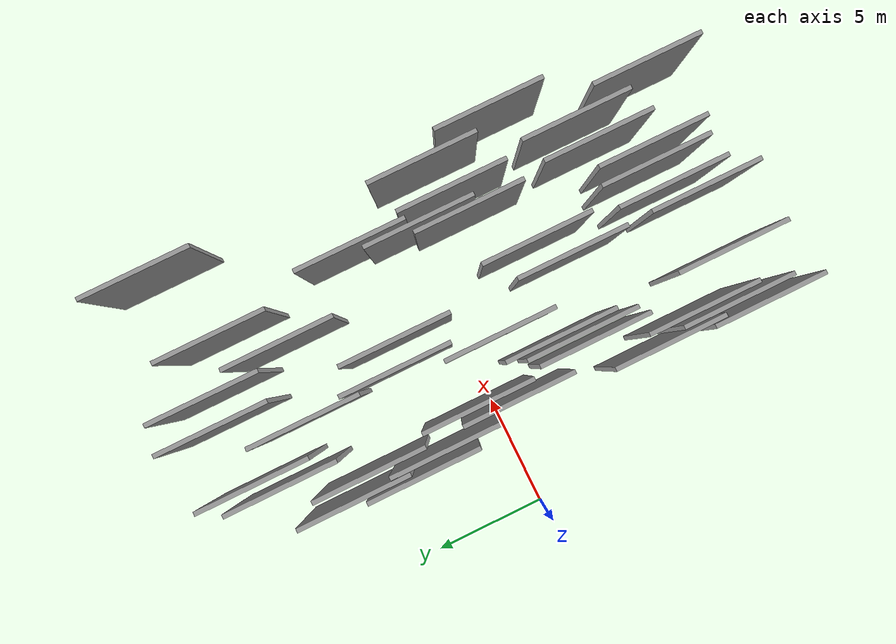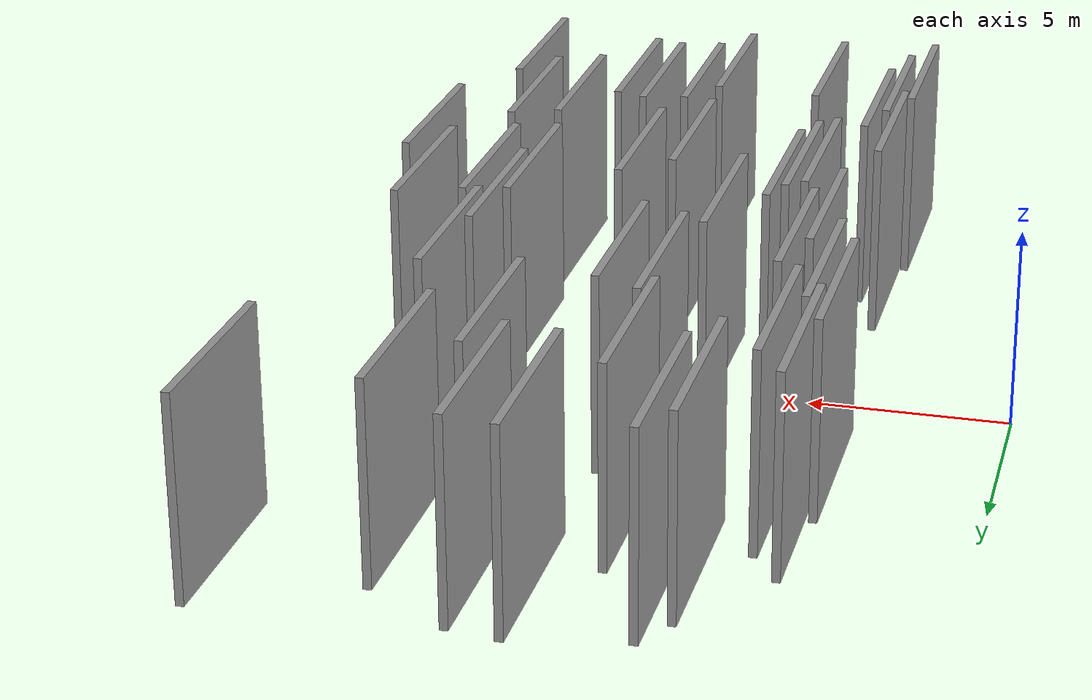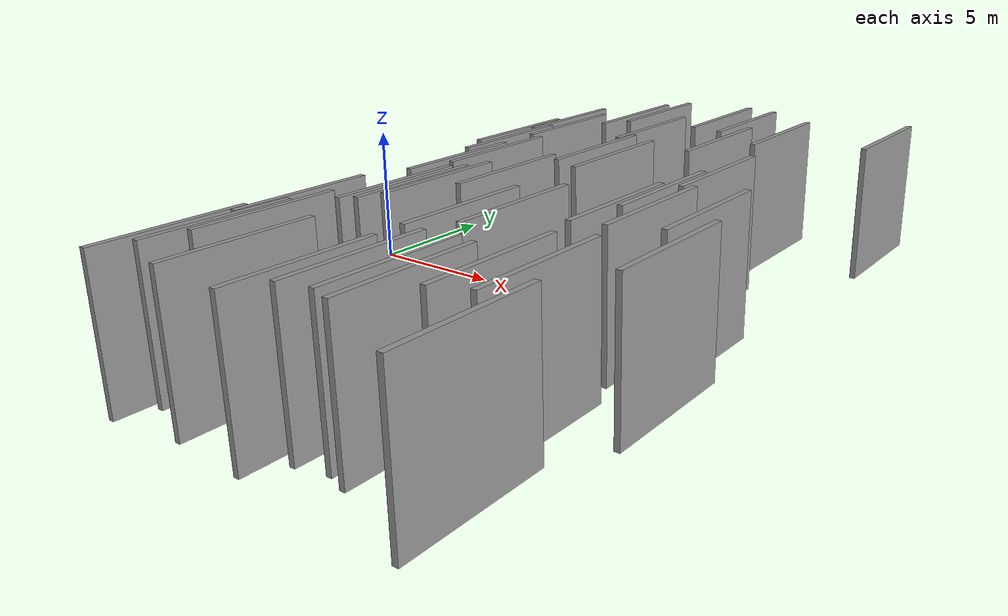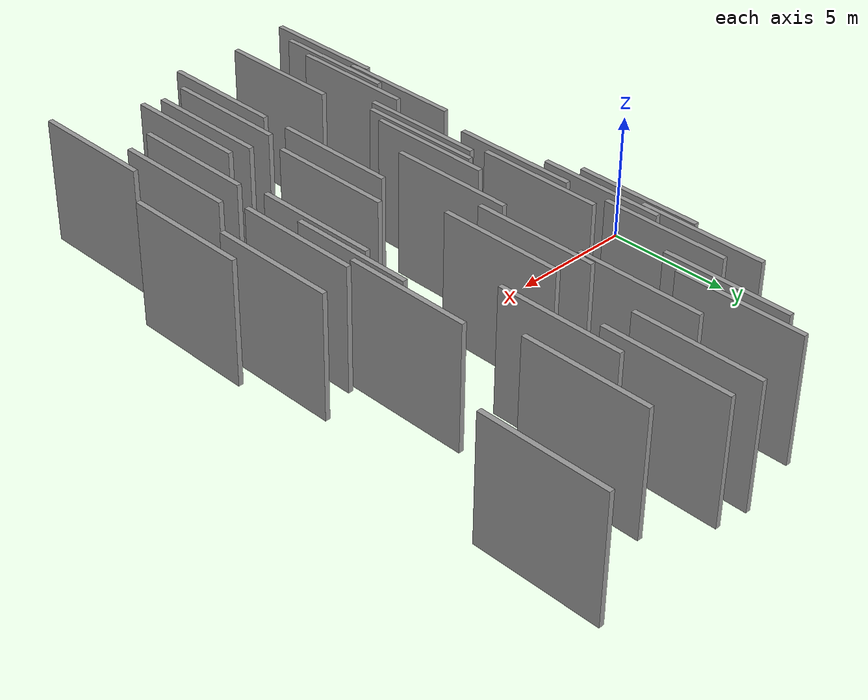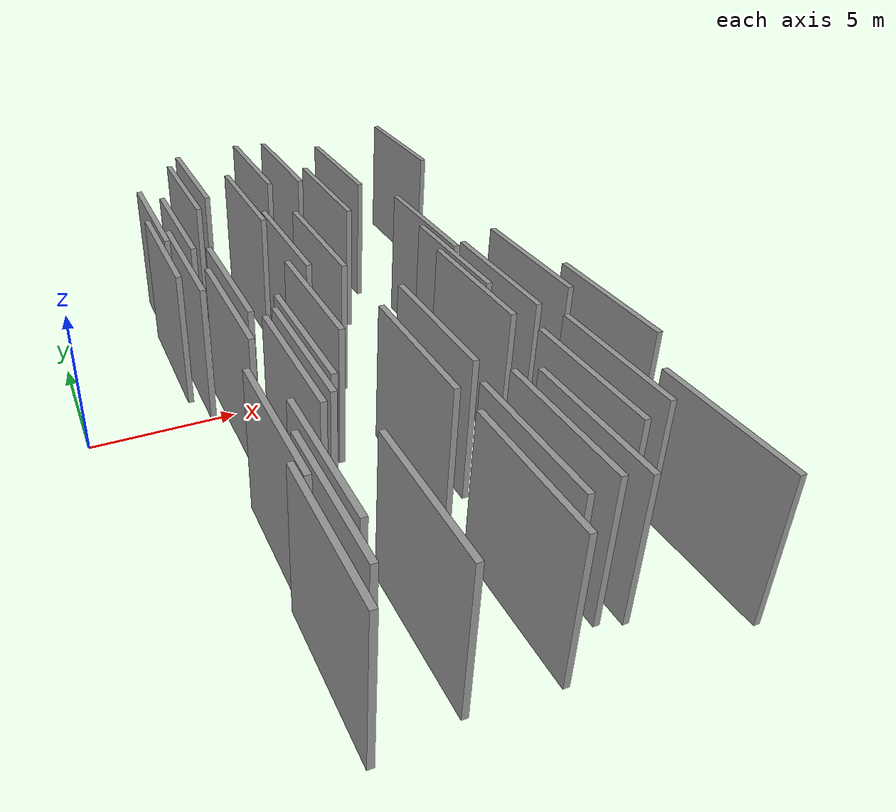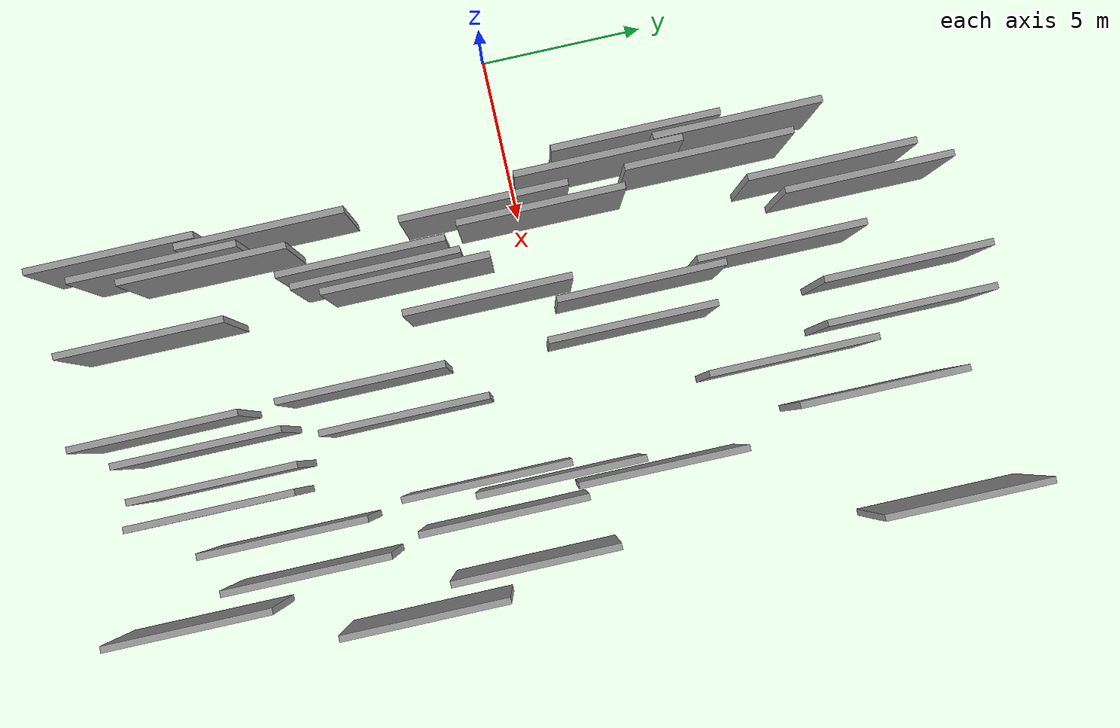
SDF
<sdf version="1.6">
 <world name="default">
  <scene>
   <sky><clouds><speed>12</speed></clouds></sky>
   <ambient>0.4 0.4 0.4 1</ambient>
   <background>0.7 0.7 0.7 1</background>
   <shadows>1</shadows>
  </scene>
  <gravity>0 0 -9.8066</gravity>
  <magnetic_field>6e-06 2.3e-05 -4.2e-05</magnetic_field>
  <physics default="0" name="default_physics" type="ode">
   <ode>
    <solver>
     <type>quick</type>
     <iters>10</iters>
     <sor>1.0</sor>
     <use_dynamic_moi_rescaling>0</use_dynamic_moi_rescaling>
    </solver>
    <constraints>
     <cfm>0</cfm>
     <erp>0.2</erp>
     <contact_max_correcting_vel>100</contact_max_correcting_vel>
     <contact_surface_layer>0.001</contact_surface_layer>
    </constraints>
   </ode>
   <max_step_size>0.004</max_step_size>
   <real_time_factor>1</real_time_factor>
   <real_time_update_rate>250</real_time_update_rate>
  </physics>
  <light name="sun" type="directional">
   <pose>0 0 10 0 0 0</pose>
   <diffuse>0.8 0.8 0.8 1</diffuse>
   <specular>0.2 0.2 0.2 1</specular>
   <attenuation>
    <range>1000</range>
    <constant>0.9</constant>
    <linear>0.01</linear>
    <quadratic>0.001</quadratic>
   </attenuation>
   <direction>-0.5 0.1 -0.9</direction>
  </light>
  <model name="grey_wall_1">
   <static>1</static>
   <pose>16.1890 10.7749 0.0 0.000000 0.000000 1.570796</pose>
   <link name="link">
    <pose>0 0 2.50 0 0 0</pose>
    <collision name="collision"><geometry><box><size>5.00 0.2 5.00</size></box></geometry></collision>
    <visual name="visual">
     <cast_shadows>0</cast_shadows>
     <geometry><box><size>5.00 0.2 5.00</size></box></geometry>
     <material>
      <script>
       <uri>model://grey_wall/materials/scripts</uri>
       <uri>model://grey_wall/materials/textures</uri>
       <name>vrc/grey_wall</name>
      </script>
     </material>
    </visual>
   </link>
  </model>
  <model name="grey_wall_2">
   <static>1</static>
   <pose>4.4902 -10.6086 0.0 0.000000 0.000000 1.570796</pose>
   <link name="link">
    <pose>0 0 2.50 0 0 0</pose>
    <collision name="collision"><geometry><box><size>5.00 0.2 5.00</size></box></geometry></collision>
    <visual name="visual">
     <cast_shadows>0</cast_shadows>
     <geometry><box><size>5.00 0.2 5.00</size></box></geometry>
     <material>
      <script>
       <uri>model://grey_wall/materials/scripts</uri>
       <uri>model://grey_wall/materials/textures</uri>
       <name>vrc/grey_wall</name>
      </script>
     </material>
    </visual>
   </link>
  </model>
  <model name="grey_wall_3">
   <static>1</static>
   <pose>5.2921 0.6594 0.0 0.000000 0.000000 1.570796</pose>
   <link name="link">
    <pose>0 0 2.50 0 0 0</pose>
    <collision name="collision"><geometry><box><size>5.00 0.2 5.00</size></box></geometry></collision>
    <visual name="visual">
     <cast_shadows>0</cast_shadows>
     <geometry><box><size>5.00 0.2 5.00</size></box></geometry>
     <material>
      <script>
       <uri>model://grey_wall/materials/scripts</uri>
       <uri>model://grey_wall/materials/textures</uri>
       <name>vrc/grey_wall</name>
      </script>
     </material>
    </visual>
   </link>
  </model>
  <model name="grey_wall_4">
   <static>1</static>
   <pose>3.9765 -11.7565 0.0 0.000000 0.000000 1.570796</pose>
   <link name="link">
    <pose>0 0 2.50 0 0 0</pose>
    <collision name="collision"><geometry><box><size>5.00 0.2 5.00</size></box></geometry></collision>
    <visual name="visual">
     <cast_shadows>0</cast_shadows>
     <geometry><box><size>5.00 0.2 5.00</size></box></geometry>
     <material>
      <script>
       <uri>model://grey_wall/materials/scripts</uri>
       <uri>model://grey_wall/materials/textures</uri>
       <name>vrc/grey_wall</name>
      </script>
     </material>
    </visual>
   </link>
  </model>
  <model name="grey_wall_5">
   <static>1</static>
   <pose>4.2835 2.5784 0.0 0.000000 0.000000 1.570796</pose>
   <link name="link">
    <pose>0 0 2.50 0 0 0</pose>
    <collision name="collision"><geometry><box><size>5.00 0.2 5.00</size></box></geometry></collision>
    <visual name="visual">
     <cast_shadows>0</cast_shadows>
     <geometry><box><size>5.00 0.2 5.00</size></box></geometry>
     <material>
      <script>
       <uri>model://grey_wall/materials/scripts</uri>
       <uri>model://grey_wall/materials/textures</uri>
       <name>vrc/grey_wall</name>
      </script>
     </material>
    </visual>
   </link>
  </model>
  <model name="grey_wall_6">
   <static>1</static>
   <pose>3.7852 3.7944 0.0 0.000000 0.000000 1.570796</pose>
   <link name="link">
    <pose>0 0 2.50 0 0 0</pose>
    <collision name="collision"><geometry><box><size>5.00 0.2 5.00</size></box></geometry></collision>
    <visual name="visual">
     <cast_shadows>0</cast_shadows>
     <geometry><box><size>5.00 0.2 5.00</size></box></geometry>
     <material>
      <script>
       <uri>model://grey_wall/materials/scripts</uri>
       <uri>model://grey_wall/materials/textures</uri>
       <name>vrc/grey_wall</name>
      </script>
     </material>
    </visual>
   </link>
  </model>
  <model name="grey_wall_7">
   <static>1</static>
   <pose>11.0615 -10.2280 0.0 0.000000 0.000000 1.570796</pose>
   <link name="link">
    <pose>0 0 2.50 0 0 0</pose>
    <collision name="collision"><geometry><box><size>5.00 0.2 5.00</size></box></geometry></collision>
    <visual name="visual">
     <cast_shadows>0</cast_shadows>
     <geometry><box><size>5.00 0.2 5.00</size></box></geometry>
     <material>
      <script>
       <uri>model://grey_wall/materials/scripts</uri>
       <uri>model://grey_wall/materials/textures</uri>
       <name>vrc/grey_wall</name>
      </script>
     </material>
    </visual>
   </link>
  </model>
  <model name="grey_wall_8">
   <static>1</static>
   <pose>6.3820 -3.5713 0.0 0.000000 0.000000 1.570796</pose>
   <link name="link">
    <pose>0 0 2.50 0 0 0</pose>
    <collision name="collision"><geometry><box><size>5.00 0.2 5.00</size></box></geometry></collision>
    <visual name="visual">
     <cast_shadows>0</cast_shadows>
     <geometry><box><size>5.00 0.2 5.00</size></box></geometry>
     <material>
      <script>
       <uri>model://grey_wall/materials/scripts</uri>
       <uri>model://grey_wall/materials/textures</uri>
       <name>vrc/grey_wall</name>
      </script>
     </material>
    </visual>
   </link>
  </model>
  <model name="grey_wall_9">
   <static>1</static>
   <pose>4.7743 5.7458 0.0 0.000000 0.000000 1.570796</pose>
   <link name="link">
    <pose>0 0 2.50 0 0 0</pose>
    <collision name="collision"><geometry><box><size>5.00 0.2 5.00</size></box></geometry></collision>
    <visual name="visual">
     <cast_shadows>0</cast_shadows>
     <geometry><box><size>5.00 0.2 5.00</size></box></geometry>
     <material>
      <script>
       <uri>model://grey_wall/materials/scripts</uri>
       <uri>model://grey_wall/materials/textures</uri>
       <name>vrc/grey_wall</name>
      </script>
     </material>
    </visual>
   </link>
  </model>
  <model name="grey_wall_10">
   <static>1</static>
   <pose>9.2395 -11.5773 0.0 0.000000 0.000000 1.570796</pose>
   <link name="link">
    <pose>0 0 2.50 0 0 0</pose>
    <collision name="collision"><geometry><box><size>5.00 0.2 5.00</size></box></geometry></collision>
    <visual name="visual">
     <cast_shadows>0</cast_shadows>
     <geometry><box><size>5.00 0.2 5.00</size></box></geometry>
     <material>
      <script>
       <uri>model://grey_wall/materials/scripts</uri>
       <uri>model://grey_wall/materials/textures</uri>
       <name>vrc/grey_wall</name>
      </script>
     </material>
    </visual>
   </link>
  </model>
  <model name="grey_wall_11">
   <static>1</static>
   <pose>12.5439 9.1400 0.0 0.000000 0.000000 1.570796</pose>
   <link name="link">
    <pose>0 0 2.50 0 0 0</pose>
    <collision name="collision"><geometry><box><size>5.00 0.2 5.00</size></box></geometry></collision>
    <visual name="visual">
     <cast_shadows>0</cast_shadows>
     <geometry><box><size>5.00 0.2 5.00</size></box></geometry>
     <material>
      <script>
       <uri>model://grey_wall/materials/scripts</uri>
       <uri>model://grey_wall/materials/textures</uri>
       <name>vrc/grey_wall</name>
      </script>
     </material>
    </visual>
   </link>
  </model>
  <model name="grey_wall_12">
   <static>1</static>
   <pose>6.5400 -11.4147 0.0 0.000000 0.000000 1.570796</pose>
   <link name="link">
    <pose>0 0 2.50 0 0 0</pose>
    <collision name="collision"><geometry><box><size>5.00 0.2 5.00</size></box></geometry></collision>
    <visual name="visual">
     <cast_shadows>0</cast_shadows>
     <geometry><box><size>5.00 0.2 5.00</size></box></geometry>
     <material>
      <script>
       <uri>model://grey_wall/materials/scripts</uri>
       <uri>model://grey_wall/materials/textures</uri>
       <name>vrc/grey_wall</name>
      </script>
     </material>
    </visual>
   </link>
  </model>
  <model name="grey_wall_13">
   <static>1</static>
   <pose>10.4301 10.4365 0.0 0.000000 0.000000 1.570796</pose>
   <link name="link">
    <pose>0 0 2.50 0 0 0</pose>
    <collision name="collision"><geometry><box><size>5.00 0.2 5.00</size></box></geometry></collision>
    <visual name="visual">
     <cast_shadows>0</cast_shadows>
     <geometry><box><size>5.00 0.2 5.00</size></box></geometry>
     <material>
      <script>
       <uri>model://grey_wall/materials/scripts</uri>
       <uri>model://grey_wall/materials/textures</uri>
       <name>vrc/grey_wall</name>
      </script>
     </material>
    </visual>
   </link>
  </model>
  <model name="grey_wall_14">
   <static>1</static>
   <pose>13.7706 -2.2859 0.0 0.000000 0.000000 1.570796</pose>
   <link name="link">
    <pose>0 0 2.50 0 0 0</pose>
    <collision name="collision"><geometry><box><size>5.00 0.2 5.00</size></box></geometry></collision>
    <visual name="visual">
     <cast_shadows>0</cast_shadows>
     <geometry><box><size>5.00 0.2 5.00</size></box></geometry>
     <material>
      <script>
       <uri>model://grey_wall/materials/scripts</uri>
       <uri>model://grey_wall/materials/textures</uri>
       <name>vrc/grey_wall</name>
      </script>
     </material>
    </visual>
   </link>
  </model>
  <model name="grey_wall_15">
   <static>1</static>
   <pose>13.0494 -0.4483 0.0 0.000000 0.000000 1.570796</pose>
   <link name="link">
    <pose>0 0 2.50 0 0 0</pose>
    <collision name="collision"><geometry><box><size>5.00 0.2 5.00</size></box></geometry></collision>
    <visual name="visual">
     <cast_shadows>0</cast_shadows>
     <geometry><box><size>5.00 0.2 5.00</size></box></geometry>
     <material>
      <script>
       <uri>model://grey_wall/materials/scripts</uri>
       <uri>model://grey_wall/materials/textures</uri>
       <name>vrc/grey_wall</name>
      </script>
     </material>
    </visual>
   </link>
  </model>
  <model name="grey_wall_16">
   <static>1</static>
   <pose>9.1765 10.6167 0.0 0.000000 0.000000 1.570796</pose>
   <link name="link">
    <pose>0 0 2.50 0 0 0</pose>
    <collision name="collision"><geometry><box><size>5.00 0.2 5.00</size></box></geometry></collision>
    <visual name="visual">
     <cast_shadows>0</cast_shadows>
     <geometry><box><size>5.00 0.2 5.00</size></box></geometry>
     <material>
      <script>
       <uri>model://grey_wall/materials/scripts</uri>
       <uri>model://grey_wall/materials/textures</uri>
       <name>vrc/grey_wall</name>
      </script>
     </material>
    </visual>
   </link>
  </model>
  <model name="grey_wall_17">
   <static>1</static>
   <pose>11.1029 6.8066 0.0 0.000000 0.000000 1.570796</pose>
   <link name="link">
    <pose>0 0 2.50 0 0 0</pose>
    <collision name="collision"><geometry><box><size>5.00 0.2 5.00</size></box></geometry></collision>
    <visual name="visual">
     <cast_shadows>0</cast_shadows>
     <geometry><box><size>5.00 0.2 5.00</size></box></geometry>
     <material>
      <script>
       <uri>model://grey_wall/materials/scripts</uri>
       <uri>model://grey_wall/materials/textures</uri>
       <name>vrc/grey_wall</name>
      </script>
     </material>
    </visual>
   </link>
  </model>
  <model name="grey_wall_18">
   <static>1</static>
   <pose>13.0073 -8.5880 0.0 0.000000 0.000000 1.570796</pose>
   <link name="link">
    <pose>0 0 2.50 0 0 0</pose>
    <collision name="collision"><geometry><box><size>5.00 0.2 5.00</size></box></geometry></collision>
    <visual name="visual">
     <cast_shadows>0</cast_shadows>
     <geometry><box><size>5.00 0.2 5.00</size></box></geometry>
     <material>
      <script>
       <uri>model://grey_wall/materials/scripts</uri>
       <uri>model://grey_wall/materials/textures</uri>
       <name>vrc/grey_wall</name>
      </script>
     </material>
    </visual>
   </link>
  </model>
  <model name="grey_wall_19">
   <static>1</static>
   <pose>12.7009 -2.5524 0.0 0.000000 0.000000 1.570796</pose>
   <link name="link">
    <pose>0 0 2.50 0 0 0</pose>
    <collision name="collision"><geometry><box><size>5.00 0.2 5.00</size></box></geometry></collision>
    <visual name="visual">
     <cast_shadows>0</cast_shadows>
     <geometry><box><size>5.00 0.2 5.00</size></box></geometry>
     <material>
      <script>
       <uri>model://grey_wall/materials/scripts</uri>
       <uri>model://grey_wall/materials/textures</uri>
       <name>vrc/grey_wall</name>
      </script>
     </material>
    </visual>
   </link>
  </model>
  <model name="grey_wall_20">
   <static>1</static>
   <pose>9.9651 -10.4647 0.0 0.000000 0.000000 1.570796</pose>
   <link name="link">
    <pose>0 0 2.50 0 0 0</pose>
    <collision name="collision"><geometry><box><size>5.00 0.2 5.00</size></box></geometry></collision>
    <visual name="visual">
     <cast_shadows>0</cast_shadows>
     <geometry><box><size>5.00 0.2 5.00</size></box></geometry>
     <material>
      <script>
       <uri>model://grey_wall/materials/scripts</uri>
       <uri>model://grey_wall/materials/textures</uri>
       <name>vrc/grey_wall</name>
      </script>
     </material>
    </visual>
   </link>
  </model>
  <model name="grey_wall_21">
   <static>1</static>
   <pose>10.3295 -4.4510 0.0 0.000000 0.000000 1.570796</pose>
   <link name="link">
    <pose>0 0 2.50 0 0 0</pose>
    <collision name="collision"><geometry><box><size>5.00 0.2 5.00</size></box></geometry></collision>
    <visual name="visual">
     <cast_shadows>0</cast_shadows>
     <geometry><box><size>5.00 0.2 5.00</size></box></geometry>
     <material>
      <script>
       <uri>model://grey_wall/materials/scripts</uri>
       <uri>model://grey_wall/materials/textures</uri>
       <name>vrc/grey_wall</name>
      </script>
     </material>
    </visual>
   </link>
  </model>
  <model name="grey_wall_22">
   <static>1</static>
   <pose>14.9685 -11.7836 0.0 0.000000 0.000000 1.570796</pose>
   <link name="link">
    <pose>0 0 2.50 0 0 0</pose>
    <collision name="collision"><geometry><box><size>5.00 0.2 5.00</size></box></geometry></collision>
    <visual name="visual">
     <cast_shadows>0</cast_shadows>
     <geometry><box><size>5.00 0.2 5.00</size></box></geometry>
     <material>
      <script>
       <uri>model://grey_wall/materials/scripts</uri>
       <uri>model://grey_wall/materials/textures</uri>
       <name>vrc/grey_wall</name>
      </script>
     </material>
    </visual>
   </link>
  </model>
  <model name="grey_wall_23">
   <static>1</static>
   <pose>5.8362 9.1345 0.0 0.000000 0.000000 1.570796</pose>
   <link name="link">
    <pose>0 0 2.50 0 0 0</pose>
    <collision name="collision"><geometry><box><size>5.00 0.2 5.00</size></box></geometry></collision>
    <visual name="visual">
     <cast_shadows>0</cast_shadows>
     <geometry><box><size>5.00 0.2 5.00</size></box></geometry>
     <material>
      <script>
       <uri>model://grey_wall/materials/scripts</uri>
       <uri>model://grey_wall/materials/textures</uri>
       <name>vrc/grey_wall</name>
      </script>
     </material>
    </visual>
   </link>
  </model>
  <model name="grey_wall_24">
   <static>1</static>
   <pose>6.0527 -4.3754 0.0 0.000000 0.000000 1.570796</pose>
   <link name="link">
    <pose>0 0 2.50 0 0 0</pose>
    <collision name="collision"><geometry><box><size>5.00 0.2 5.00</size></box></geometry></collision>
    <visual name="visual">
     <cast_shadows>0</cast_shadows>
     <geometry><box><size>5.00 0.2 5.00</size></box></geometry>
     <material>
      <script>
       <uri>model://grey_wall/materials/scripts</uri>
       <uri>model://grey_wall/materials/textures</uri>
       <name>vrc/grey_wall</name>
      </script>
     </material>
    </visual>
   </link>
  </model>
  <model name="grey_wall_25">
   <static>1</static>
   <pose>7.8155 7.2019 0.0 0.000000 0.000000 1.570796</pose>
   <link name="link">
    <pose>0 0 2.50 0 0 0</pose>
    <collision name="collision"><geometry><box><size>5.00 0.2 5.00</size></box></geometry></collision>
    <visual name="visual">
     <cast_shadows>0</cast_shadows>
     <geometry><box><size>5.00 0.2 5.00</size></box></geometry>
     <material>
      <script>
       <uri>model://grey_wall/materials/scripts</uri>
       <uri>model://grey_wall/materials/textures</uri>
       <name>vrc/grey_wall</name>
      </script>
     </material>
    </visual>
   </link>
  </model>
  <model name="grey_wall_26">
   <static>1</static>
   <pose>4.2065 -7.3887 0.0 0.000000 0.000000 1.570796</pose>
   <link name="link">
    <pose>0 0 2.50 0 0 0</pose>
    <collision name="collision"><geometry><box><size>5.00 0.2 5.00</size></box></geometry></collision>
    <visual name="visual">
     <cast_shadows>0</cast_shadows>
     <geometry><box><size>5.00 0.2 5.00</size></box></geometry>
     <material>
      <script>
       <uri>model://grey_wall/materials/scripts</uri>
       <uri>model://grey_wall/materials/textures</uri>
       <name>vrc/grey_wall</name>
      </script>
     </material>
    </visual>
   </link>
  </model>
  <model name="grey_wall_27">
   <static>1</static>
   <pose>11.8130 -10.4673 0.0 0.000000 0.000000 1.570796</pose>
   <link name="link">
    <pose>0 0 2.50 0 0 0</pose>
    <collision name="collision"><geometry><box><size>5.00 0.2 5.00</size></box></geometry></collision>
    <visual name="visual">
     <cast_shadows>0</cast_shadows>
     <geometry><box><size>5.00 0.2 5.00</size></box></geometry>
     <material>
      <script>
       <uri>model://grey_wall/materials/scripts</uri>
       <uri>model://grey_wall/materials/textures</uri>
       <name>vrc/grey_wall</name>
      </script>
     </material>
    </visual>
   </link>
  </model>
  <model name="grey_wall_28">
   <static>1</static>
   <pose>13.4015 2.4815 0.0 0.000000 0.000000 1.570796</pose>
   <link name="link">
    <pose>0 0 2.50 0 0 0</pose>
    <collision name="collision"><geometry><box><size>5.00 0.2 5.00</size></box></geometry></collision>
    <visual name="visual">
     <cast_shadows>0</cast_shadows>
     <geometry><box><size>5.00 0.2 5.00</size></box></geometry>
     <material>
      <script>
       <uri>model://grey_wall/materials/scripts</uri>
       <uri>model://grey_wall/materials/textures</uri>
       <name>vrc/grey_wall</name>
      </script>
     </material>
    </visual>
   </link>
  </model>
  <model name="grey_wall_29">
   <static>1</static>
   <pose>14.1782 -8.1457 0.0 0.000000 0.000000 1.570796</pose>
   <link name="link">
    <pose>0 0 2.50 0 0 0</pose>
    <collision name="collision"><geometry><box><size>5.00 0.2 5.00</size></box></geometry></collision>
    <visual name="visual">
     <cast_shadows>0</cast_shadows>
     <geometry><box><size>5.00 0.2 5.00</size></box></geometry>
     <material>
      <script>
       <uri>model://grey_wall/materials/scripts</uri>
       <uri>model://grey_wall/materials/textures</uri>
       <name>vrc/grey_wall</name>
      </script>
     </material>
    </visual>
   </link>
  </model>
  <model name="grey_wall_30">
   <static>1</static>
   <pose>15.3384 -1.6982 0.0 0.000000 0.000000 1.570796</pose>
   <link name="link">
    <pose>0 0 2.50 0 0 0</pose>
    <collision name="collision"><geometry><box><size>5.00 0.2 5.00</size></box></geometry></collision>
    <visual name="visual">
     <cast_shadows>0</cast_shadows>
     <geometry><box><size>5.00 0.2 5.00</size></box></geometry>
     <material>
      <script>
       <uri>model://grey_wall/materials/scripts</uri>
       <uri>model://grey_wall/materials/textures</uri>
       <name>vrc/grey_wall</name>
      </script>
     </material>
    </visual>
   </link>
  </model>
  <model name="grey_wall_31">
   <static>1</static>
   <pose>5.6248 -4.7272 0.0 0.000000 0.000000 1.570796</pose>
   <link name="link">
    <pose>0 0 2.50 0 0 0</pose>
    <collision name="collision"><geometry><box><size>5.00 0.2 5.00</size></box></geometry></collision>
    <visual name="visual">
     <cast_shadows>0</cast_shadows>
     <geometry><box><size>5.00 0.2 5.00</size></box></geometry>
     <material>
      <script>
       <uri>model://grey_wall/materials/scripts</uri>
       <uri>model://grey_wall/materials/textures</uri>
       <name>vrc/grey_wall</name>
      </script>
     </material>
    </visual>
   </link>
  </model>
  <model name="grey_wall_32">
   <static>1</static>
   <pose>7.4906 -1.3918 0.0 0.000000 0.000000 1.570796</pose>
   <link name="link">
    <pose>0 0 2.50 0 0 0</pose>
    <collision name="collision"><geometry><box><size>5.00 0.2 5.00</size></box></geometry></collision>
    <visual name="visual">
     <cast_shadows>0</cast_shadows>
     <geometry><box><size>5.00 0.2 5.00</size></box></geometry>
     <material>
      <script>
       <uri>model://grey_wall/materials/scripts</uri>
       <uri>model://grey_wall/materials/textures</uri>
       <name>vrc/grey_wall</name>
      </script>
     </material>
    </visual>
   </link>
  </model>
  <model name="grey_wall_33">
   <static>1</static>
   <pose>8.0664 3.0144 0.0 0.000000 0.000000 1.570796</pose>
   <link name="link">
    <pose>0 0 2.50 0 0 0</pose>
    <collision name="collision"><geometry><box><size>5.00 0.2 5.00</size></box></geometry></collision>
    <visual name="visual">
     <cast_shadows>0</cast_shadows>
     <geometry><box><size>5.00 0.2 5.00</size></box></geometry>
     <material>
      <script>
       <uri>model://grey_wall/materials/scripts</uri>
       <uri>model://grey_wall/materials/textures</uri>
       <name>vrc/grey_wall</name>
      </script>
     </material>
    </visual>
   </link>
  </model>
  <model name="grey_wall_34">
   <static>1</static>
   <pose>16.1436 -5.1143 0.0 0.000000 0.000000 1.570796</pose>
   <link name="link">
    <pose>0 0 2.50 0 0 0</pose>
    <collision name="collision"><geometry><box><size>5.00 0.2 5.00</size></box></geometry></collision>
    <visual name="visual">
     <cast_shadows>0</cast_shadows>
     <geometry><box><size>5.00 0.2 5.00</size></box></geometry>
     <material>
      <script>
       <uri>model://grey_wall/materials/scripts</uri>
       <uri>model://grey_wall/materials/textures</uri>
       <name>vrc/grey_wall</name>
      </script>
     </material>
    </visual>
   </link>
  </model>
  <model name="grey_wall_35">
   <static>1</static>
   <pose>6.4244 10.1005 0.0 0.000000 0.000000 1.570796</pose>
   <link name="link">
    <pose>0 0 2.50 0 0 0</pose>
    <collision name="collision"><geometry><box><size>5.00 0.2 5.00</size></box></geometry></collision>
    <visual name="visual">
     <cast_shadows>0</cast_shadows>
     <geometry><box><size>5.00 0.2 5.00</size></box></geometry>
     <material>
      <script>
       <uri>model://grey_wall/materials/scripts</uri>
       <uri>model://grey_wall/materials/textures</uri>
       <name>vrc/grey_wall</name>
      </script>
     </material>
    </visual>
   </link>
  </model>
  <model name="grey_wall_36">
   <static>1</static>
   <pose>4.0707 6.7411 0.0 0.000000 0.000000 1.570796</pose>
   <link name="link">
    <pose>0 0 2.50 0 0 0</pose>
    <collision name="collision"><geometry><box><size>5.00 0.2 5.00</size></box></geometry></collision>
    <visual name="visual">
     <cast_shadows>0</cast_shadows>
     <geometry><box><size>5.00 0.2 5.00</size></box></geometry>
     <material>
      <script>
       <uri>model://grey_wall/materials/scripts</uri>
       <uri>model://grey_wall/materials/textures</uri>
       <name>vrc/grey_wall</name>
      </script>
     </material>
    </visual>
   </link>
  </model>
  <model name="grey_wall_37">
   <static>1</static>
   <pose>4.8304 -0.9244 0.0 0.000000 0.000000 1.570796</pose>
   <link name="link">
    <pose>0 0 2.50 0 0 0</pose>
    <collision name="collision"><geometry><box><size>5.00 0.2 5.00</size></box></geometry></collision>
    <visual name="visual">
     <cast_shadows>0</cast_shadows>
     <geometry><box><size>5.00 0.2 5.00</size></box></geometry>
     <material>
      <script>
       <uri>model://grey_wall/materials/scripts</uri>
       <uri>model://grey_wall/materials/textures</uri>
       <name>vrc/grey_wall</name>
      </script>
     </material>
    </visual>
   </link>
  </model>
  <model name="grey_wall_38">
   <static>1</static>
   <pose>9.1624 2.5200 0.0 0.000000 0.000000 1.570796</pose>
   <link name="link">
    <pose>0 0 2.50 0 0 0</pose>
    <collision name="collision"><geometry><box><size>5.00 0.2 5.00</size></box></geometry></collision>
    <visual name="visual">
     <cast_shadows>0</cast_shadows>
     <geometry><box><size>5.00 0.2 5.00</size></box></geometry>
     <material>
      <script>
       <uri>model://grey_wall/materials/scripts</uri>
       <uri>model://grey_wall/materials/textures</uri>
       <name>vrc/grey_wall</name>
      </script>
     </material>
    </visual>
   </link>
  </model>
  <model name="grey_wall_39">
   <static>1</static>
   <pose>4.8498 -9.2319 0.0 0.000000 0.000000 1.570796</pose>
   <link name="link">
    <pose>0 0 2.50 0 0 0</pose>
    <collision name="collision"><geometry><box><size>5.00 0.2 5.00</size></box></geometry></collision>
    <visual name="visual">
     <cast_shadows>0</cast_shadows>
     <geometry><box><size>5.00 0.2 5.00</size></box></geometry>
     <material>
      <script>
       <uri>model://grey_wall/materials/scripts</uri>
       <uri>model://grey_wall/materials/textures</uri>
       <name>vrc/grey_wall</name>
      </script>
     </material>
    </visual>
   </link>
  </model>
  <model name="grey_wall_40">
   <static>1</static>
   <pose>9.1750 -5.4936 0.0 0.000000 0.000000 1.570796</pose>
   <link name="link">
    <pose>0 0 2.50 0 0 0</pose>
    <collision name="collision"><geometry><box><size>5.00 0.2 5.00</size></box></geometry></collision>
    <visual name="visual">
     <cast_shadows>0</cast_shadows>
     <geometry><box><size>5.00 0.2 5.00</size></box></geometry>
     <material>
      <script>
       <uri>model://grey_wall/materials/scripts</uri>
       <uri>model://grey_wall/materials/textures</uri>
       <name>vrc/grey_wall</name>
      </script>
     </material>
    </visual>
   </link>
  </model>
 </world>
</sdf>
